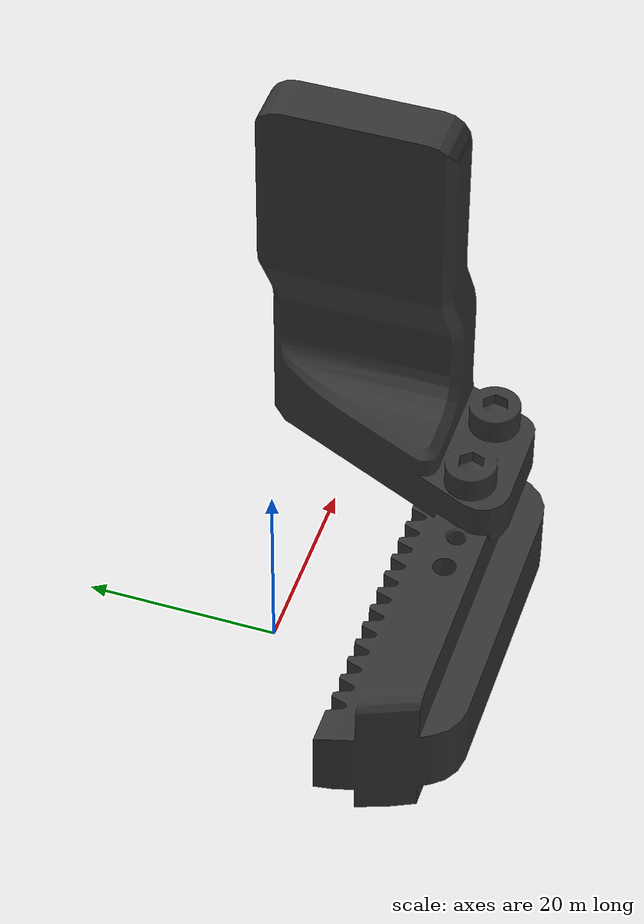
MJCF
<mujoco model="finger_1">
  <default>
    <default class="visual">
      <geom group="2" type="mesh" contype="0" conaffinity="0"/>
    </default>
    <default class="collision">
      <geom group="3" type="mesh"/>
    </default>
  </default>
  <asset>
    <material name="mtl_finger_1" specular="0.20000000000000004" shininess="1.0" rgba="0.20000000 0.20000000 0.20000000 1.0"/>
    <mesh file="finger_1.obj"/>
    <mesh file="finger_1_collision_0.obj"/>
    <mesh file="finger_1_collision_1.obj"/>
    <mesh file="finger_1_collision_2.obj"/>
    <mesh file="finger_1_collision_3.obj"/>
    <mesh file="finger_1_collision_4.obj"/>
    <mesh file="finger_1_collision_5.obj"/>
    <mesh file="finger_1_collision_6.obj"/>
    <mesh file="finger_1_collision_7.obj"/>
    <mesh file="finger_1_collision_8.obj"/>
    <mesh file="finger_1_collision_9.obj"/>
    <mesh file="finger_1_collision_10.obj"/>
    <mesh file="finger_1_collision_11.obj"/>
    <mesh file="finger_1_collision_12.obj"/>
    <mesh file="finger_1_collision_13.obj"/>
    <mesh file="finger_1_collision_14.obj"/>
    <mesh file="finger_1_collision_15.obj"/>
    <mesh file="finger_1_collision_16.obj"/>
  </asset>
  <worldbody>
    <body name="finger_1">
      <geom material="mtl_finger_1" mesh="finger_1" class="visual"/>
      <geom mesh="finger_1_collision_0" rgba="0.06454342523744139 0.30570043059254515 0.778679212004521 1" class="collision"/>
      <geom mesh="finger_1_collision_1" rgba="0.9009576681697291 0.25259798958195856 0.1474807071357408 1" class="collision"/>
      <geom mesh="finger_1_collision_2" rgba="0.2005829229021966 0.3214414433208076 0.6065501389517628 1" class="collision"/>
      <geom mesh="finger_1_collision_3" rgba="0.20645757890893268 0.16377522715477155 0.2505828955717503 1" class="collision"/>
      <geom mesh="finger_1_collision_4" rgba="0.1271163179531546 0.3557140497453397 0.9864309576912781 1" class="collision"/>
      <geom mesh="finger_1_collision_5" rgba="0.8994991198376271 0.02957415753510173 0.6247361941166119 1" class="collision"/>
      <geom mesh="finger_1_collision_6" rgba="0.007365047952033743 0.5245031699444205 0.10241138863153909 1" class="collision"/>
      <geom mesh="finger_1_collision_7" rgba="0.26806300462608246 0.14692080803931962 0.6899201069361771 1" class="collision"/>
      <geom mesh="finger_1_collision_8" rgba="0.5926370622666522 0.9809197166072081 0.12257768346991438 1" class="collision"/>
      <geom mesh="finger_1_collision_9" rgba="0.06818949087715487 0.15666461338704318 0.9598653583527853 1" class="collision"/>
      <geom mesh="finger_1_collision_10" rgba="0.23137580413709136 0.8910525159613663 0.6785064818545579 1" class="collision"/>
      <geom mesh="finger_1_collision_11" rgba="0.9995067700865726 0.0407615966695678 0.36447503197857134 1" class="collision"/>
      <geom mesh="finger_1_collision_12" rgba="0.977209079170285 0.4404159665736189 0.6856598609849316 1" class="collision"/>
      <geom mesh="finger_1_collision_13" rgba="0.21555784398653566 0.7004243601563206 0.3390327732348959 1" class="collision"/>
      <geom mesh="finger_1_collision_14" rgba="0.08827241095315574 0.2667535136544388 0.8358541546957846 1" class="collision"/>
      <geom mesh="finger_1_collision_15" rgba="0.5761028025867054 0.1114293516353545 0.2766208576260316 1" class="collision"/>
      <geom mesh="finger_1_collision_16" rgba="0.8137842324860909 0.1429297353046276 0.6632905045539723 1" class="collision"/>
    </body>
  </worldbody>
</mujoco>
